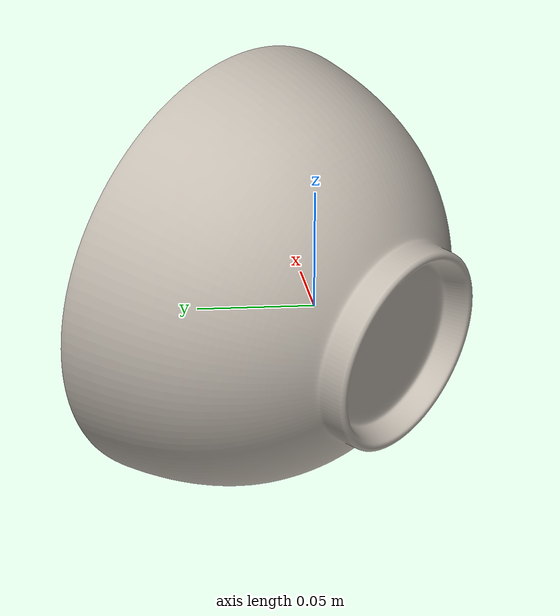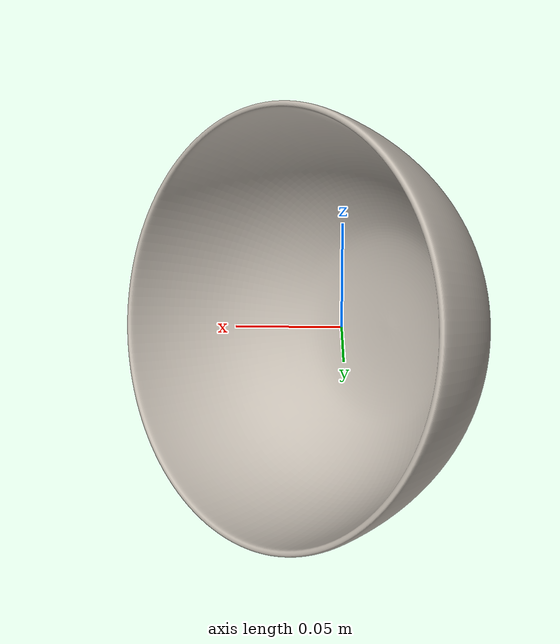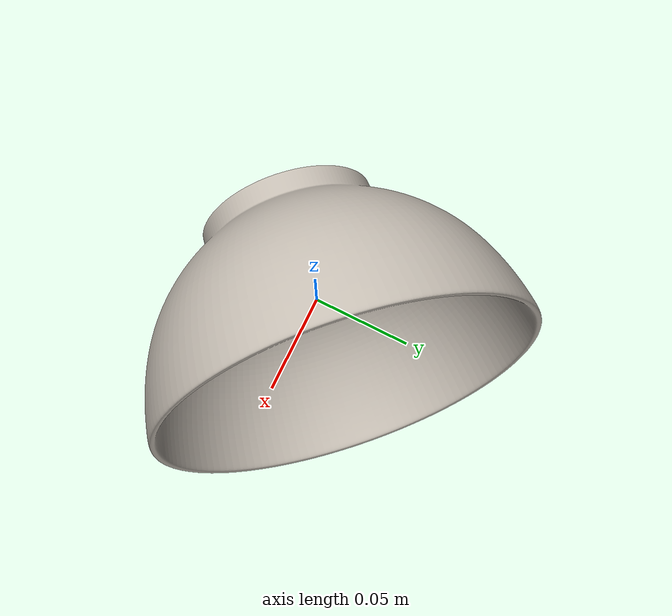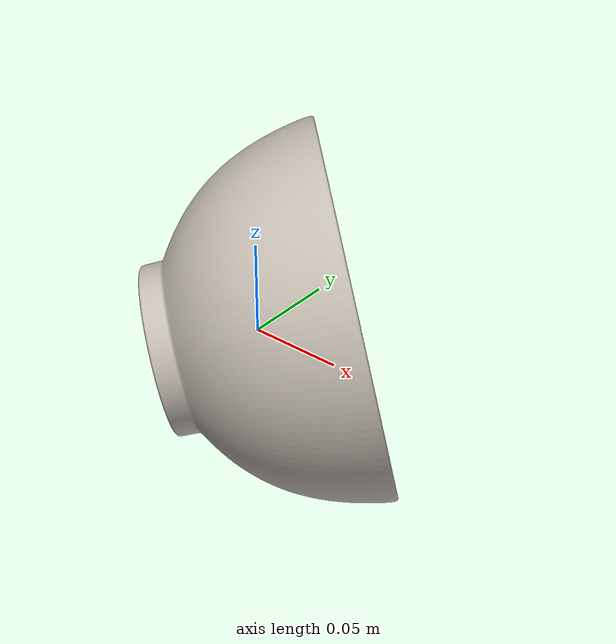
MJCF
<mujoco model="plate_10">
  <asset>
    <mesh file="visual/model_normalized_0.obj" name="model_normalized_0_vis" scale="0.2 0.2 0.2" refquat="0.7397248827654451 0.5594849272637079 -0.29905092401907074 0.2243930899687281" />
    <mesh file="collision/model_normalized_collision_22.obj" name="model_normalized_collision_22._coll" scale="0.2 0.2 0.2" refquat="0.7397248827654451 0.5594849272637079 -0.29905092401907074 0.2243930899687281" />
    <mesh file="collision/model_normalized_collision_23.obj" name="model_normalized_collision_23._coll" scale="0.2 0.2 0.2" refquat="0.7397248827654451 0.5594849272637079 -0.29905092401907074 0.2243930899687281" />
    <mesh file="collision/model_normalized_collision_21.obj" name="model_normalized_collision_21._coll" scale="0.2 0.2 0.2" refquat="0.7397248827654451 0.5594849272637079 -0.29905092401907074 0.2243930899687281" />
    <mesh file="collision/model_normalized_collision_20.obj" name="model_normalized_collision_20._coll" scale="0.2 0.2 0.2" refquat="0.7397248827654451 0.5594849272637079 -0.29905092401907074 0.2243930899687281" />
    <mesh file="collision/model_normalized_collision_24.obj" name="model_normalized_collision_24._coll" scale="0.2 0.2 0.2" refquat="0.7397248827654451 0.5594849272637079 -0.29905092401907074 0.2243930899687281" />
    <mesh file="collision/model_normalized_collision_30.obj" name="model_normalized_collision_30._coll" scale="0.2 0.2 0.2" refquat="0.7397248827654451 0.5594849272637079 -0.29905092401907074 0.2243930899687281" />
    <mesh file="collision/model_normalized_collision_18.obj" name="model_normalized_collision_18._coll" scale="0.2 0.2 0.2" refquat="0.7397248827654451 0.5594849272637079 -0.29905092401907074 0.2243930899687281" />
    <mesh file="collision/model_normalized_collision_19.obj" name="model_normalized_collision_19._coll" scale="0.2 0.2 0.2" refquat="0.7397248827654451 0.5594849272637079 -0.29905092401907074 0.2243930899687281" />
    <mesh file="collision/model_normalized_collision_31.obj" name="model_normalized_collision_31._coll" scale="0.2 0.2 0.2" refquat="0.7397248827654451 0.5594849272637079 -0.29905092401907074 0.2243930899687281" />
    <mesh file="collision/model_normalized_collision_25.obj" name="model_normalized_collision_25._coll" scale="0.2 0.2 0.2" refquat="0.7397248827654451 0.5594849272637079 -0.29905092401907074 0.2243930899687281" />
    <mesh file="collision/model_normalized_collision_27.obj" name="model_normalized_collision_27._coll" scale="0.2 0.2 0.2" refquat="0.7397248827654451 0.5594849272637079 -0.29905092401907074 0.2243930899687281" />
    <mesh file="collision/model_normalized_collision_26.obj" name="model_normalized_collision_26._coll" scale="0.2 0.2 0.2" refquat="0.7397248827654451 0.5594849272637079 -0.29905092401907074 0.2243930899687281" />
    <mesh file="collision/model_normalized_collision_9.obj" name="model_normalized_collision_9._coll" scale="0.2 0.2 0.2" refquat="0.7397248827654451 0.5594849272637079 -0.29905092401907074 0.2243930899687281" />
    <mesh file="collision/model_normalized_collision_8.obj" name="model_normalized_collision_8._coll" scale="0.2 0.2 0.2" refquat="0.7397248827654451 0.5594849272637079 -0.29905092401907074 0.2243930899687281" />
    <mesh file="collision/model_normalized_collision_6.obj" name="model_normalized_collision_6._coll" scale="0.2 0.2 0.2" refquat="0.7397248827654451 0.5594849272637079 -0.29905092401907074 0.2243930899687281" />
    <mesh file="collision/model_normalized_collision_7.obj" name="model_normalized_collision_7._coll" scale="0.2 0.2 0.2" refquat="0.7397248827654451 0.5594849272637079 -0.29905092401907074 0.2243930899687281" />
    <mesh file="collision/model_normalized_collision_5.obj" name="model_normalized_collision_5._coll" scale="0.2 0.2 0.2" refquat="0.7397248827654451 0.5594849272637079 -0.29905092401907074 0.2243930899687281" />
    <mesh file="collision/model_normalized_collision_4.obj" name="model_normalized_collision_4._coll" scale="0.2 0.2 0.2" refquat="0.7397248827654451 0.5594849272637079 -0.29905092401907074 0.2243930899687281" />
    <mesh file="collision/model_normalized_collision_0.obj" name="model_normalized_collision_0._coll" scale="0.2 0.2 0.2" refquat="0.7397248827654451 0.5594849272637079 -0.29905092401907074 0.2243930899687281" />
    <mesh file="collision/model_normalized_collision_1.obj" name="model_normalized_collision_1._coll" scale="0.2 0.2 0.2" refquat="0.7397248827654451 0.5594849272637079 -0.29905092401907074 0.2243930899687281" />
    <mesh file="collision/model_normalized_collision_3.obj" name="model_normalized_collision_3._coll" scale="0.2 0.2 0.2" refquat="0.7397248827654451 0.5594849272637079 -0.29905092401907074 0.2243930899687281" />
    <mesh file="collision/model_normalized_collision_2.obj" name="model_normalized_collision_2._coll" scale="0.2 0.2 0.2" refquat="0.7397248827654451 0.5594849272637079 -0.29905092401907074 0.2243930899687281" />
    <mesh file="collision/model_normalized_collision_17.obj" name="model_normalized_collision_17._coll" scale="0.2 0.2 0.2" refquat="0.7397248827654451 0.5594849272637079 -0.29905092401907074 0.2243930899687281" />
    <mesh file="collision/model_normalized_collision_16.obj" name="model_normalized_collision_16._coll" scale="0.2 0.2 0.2" refquat="0.7397248827654451 0.5594849272637079 -0.29905092401907074 0.2243930899687281" />
    <mesh file="collision/model_normalized_collision_28.obj" name="model_normalized_collision_28._coll" scale="0.2 0.2 0.2" refquat="0.7397248827654451 0.5594849272637079 -0.29905092401907074 0.2243930899687281" />
    <mesh file="collision/model_normalized_collision_14.obj" name="model_normalized_collision_14._coll" scale="0.2 0.2 0.2" refquat="0.7397248827654451 0.5594849272637079 -0.29905092401907074 0.2243930899687281" />
    <mesh file="collision/model_normalized_collision_15.obj" name="model_normalized_collision_15._coll" scale="0.2 0.2 0.2" refquat="0.7397248827654451 0.5594849272637079 -0.29905092401907074 0.2243930899687281" />
    <mesh file="collision/model_normalized_collision_29.obj" name="model_normalized_collision_29._coll" scale="0.2 0.2 0.2" refquat="0.7397248827654451 0.5594849272637079 -0.29905092401907074 0.2243930899687281" />
    <mesh file="collision/model_normalized_collision_11.obj" name="model_normalized_collision_11._coll" scale="0.2 0.2 0.2" refquat="0.7397248827654451 0.5594849272637079 -0.29905092401907074 0.2243930899687281" />
    <mesh file="collision/model_normalized_collision_10.obj" name="model_normalized_collision_10._coll" scale="0.2 0.2 0.2" refquat="0.7397248827654451 0.5594849272637079 -0.29905092401907074 0.2243930899687281" />
    <mesh file="collision/model_normalized_collision_12.obj" name="model_normalized_collision_12._coll" scale="0.2 0.2 0.2" refquat="0.7397248827654451 0.5594849272637079 -0.29905092401907074 0.2243930899687281" />
    <mesh file="collision/model_normalized_collision_13.obj" name="model_normalized_collision_13._coll" scale="0.2 0.2 0.2" refquat="0.7397248827654451 0.5594849272637079 -0.29905092401907074 0.2243930899687281" />
    <texture type="2d" name="image0" file="visual/image0.png" />
    <material name="defaultMat.035" texture="image0" specular="0.5" shininess="0.800356625" />
  </asset>
  <worldbody>
  <body>
      <body name="object">
        <geom solimp="0.998 0.998 0.001" solref="0.001 1" density="100" friction="0.95 0.3 0.1" type="mesh" mesh="model_normalized_0_vis" conaffinity="0" contype="0" group="1" material="defaultMat.035" />
        <geom solimp="0.998 0.998 0.001" solref="0.001 1" density="100" friction="0.95 0.3 0.1" type="mesh" mesh="model_normalized_collision_22._coll" group="0" rgba="0.8 0.8 0.8 0.0" />
        <geom solimp="0.998 0.998 0.001" solref="0.001 1" density="100" friction="0.95 0.3 0.1" type="mesh" mesh="model_normalized_collision_23._coll" group="0" rgba="0.8 0.8 0.8 0.0" />
        <geom solimp="0.998 0.998 0.001" solref="0.001 1" density="100" friction="0.95 0.3 0.1" type="mesh" mesh="model_normalized_collision_21._coll" group="0" rgba="0.8 0.8 0.8 0.0" />
        <geom solimp="0.998 0.998 0.001" solref="0.001 1" density="100" friction="0.95 0.3 0.1" type="mesh" mesh="model_normalized_collision_20._coll" group="0" rgba="0.8 0.8 0.8 0.0" />
        <geom solimp="0.998 0.998 0.001" solref="0.001 1" density="100" friction="0.95 0.3 0.1" type="mesh" mesh="model_normalized_collision_24._coll" group="0" rgba="0.8 0.8 0.8 0.0" />
        <geom solimp="0.998 0.998 0.001" solref="0.001 1" density="100" friction="0.95 0.3 0.1" type="mesh" mesh="model_normalized_collision_30._coll" group="0" rgba="0.8 0.8 0.8 0.0" />
        <geom solimp="0.998 0.998 0.001" solref="0.001 1" density="100" friction="0.95 0.3 0.1" type="mesh" mesh="model_normalized_collision_18._coll" group="0" rgba="0.8 0.8 0.8 0.0" />
        <geom solimp="0.998 0.998 0.001" solref="0.001 1" density="100" friction="0.95 0.3 0.1" type="mesh" mesh="model_normalized_collision_19._coll" group="0" rgba="0.8 0.8 0.8 0.0" />
        <geom solimp="0.998 0.998 0.001" solref="0.001 1" density="100" friction="0.95 0.3 0.1" type="mesh" mesh="model_normalized_collision_31._coll" group="0" rgba="0.8 0.8 0.8 0.0" />
        <geom solimp="0.998 0.998 0.001" solref="0.001 1" density="100" friction="0.95 0.3 0.1" type="mesh" mesh="model_normalized_collision_25._coll" group="0" rgba="0.8 0.8 0.8 0.0" />
        <geom solimp="0.998 0.998 0.001" solref="0.001 1" density="100" friction="0.95 0.3 0.1" type="mesh" mesh="model_normalized_collision_27._coll" group="0" rgba="0.8 0.8 0.8 0.0" />
        <geom solimp="0.998 0.998 0.001" solref="0.001 1" density="100" friction="0.95 0.3 0.1" type="mesh" mesh="model_normalized_collision_26._coll" group="0" rgba="0.8 0.8 0.8 0.0" />
        <geom solimp="0.998 0.998 0.001" solref="0.001 1" density="100" friction="0.95 0.3 0.1" type="mesh" mesh="model_normalized_collision_9._coll" group="0" rgba="0.8 0.8 0.8 0.0" />
        <geom solimp="0.998 0.998 0.001" solref="0.001 1" density="100" friction="0.95 0.3 0.1" type="mesh" mesh="model_normalized_collision_8._coll" group="0" rgba="0.8 0.8 0.8 0.0" />
        <geom solimp="0.998 0.998 0.001" solref="0.001 1" density="100" friction="0.95 0.3 0.1" type="mesh" mesh="model_normalized_collision_6._coll" group="0" rgba="0.8 0.8 0.8 0.0" />
        <geom solimp="0.998 0.998 0.001" solref="0.001 1" density="100" friction="0.95 0.3 0.1" type="mesh" mesh="model_normalized_collision_7._coll" group="0" rgba="0.8 0.8 0.8 0.0" />
        <geom solimp="0.998 0.998 0.001" solref="0.001 1" density="100" friction="0.95 0.3 0.1" type="mesh" mesh="model_normalized_collision_5._coll" group="0" rgba="0.8 0.8 0.8 0.0" />
        <geom solimp="0.998 0.998 0.001" solref="0.001 1" density="100" friction="0.95 0.3 0.1" type="mesh" mesh="model_normalized_collision_4._coll" group="0" rgba="0.8 0.8 0.8 0.0" />
        <geom solimp="0.998 0.998 0.001" solref="0.001 1" density="100" friction="0.95 0.3 0.1" type="mesh" mesh="model_normalized_collision_0._coll" group="0" rgba="0.8 0.8 0.8 0.0" />
        <geom solimp="0.998 0.998 0.001" solref="0.001 1" density="100" friction="0.95 0.3 0.1" type="mesh" mesh="model_normalized_collision_1._coll" group="0" rgba="0.8 0.8 0.8 0.0" />
        <geom solimp="0.998 0.998 0.001" solref="0.001 1" density="100" friction="0.95 0.3 0.1" type="mesh" mesh="model_normalized_collision_3._coll" group="0" rgba="0.8 0.8 0.8 0.0" />
        <geom solimp="0.998 0.998 0.001" solref="0.001 1" density="100" friction="0.95 0.3 0.1" type="mesh" mesh="model_normalized_collision_2._coll" group="0" rgba="0.8 0.8 0.8 0.0" />
        <geom solimp="0.998 0.998 0.001" solref="0.001 1" density="100" friction="0.95 0.3 0.1" type="mesh" mesh="model_normalized_collision_17._coll" group="0" rgba="0.8 0.8 0.8 0.0" />
        <geom solimp="0.998 0.998 0.001" solref="0.001 1" density="100" friction="0.95 0.3 0.1" type="mesh" mesh="model_normalized_collision_16._coll" group="0" rgba="0.8 0.8 0.8 0.0" />
        <geom solimp="0.998 0.998 0.001" solref="0.001 1" density="100" friction="0.95 0.3 0.1" type="mesh" mesh="model_normalized_collision_28._coll" group="0" rgba="0.8 0.8 0.8 0.0" />
        <geom solimp="0.998 0.998 0.001" solref="0.001 1" density="100" friction="0.95 0.3 0.1" type="mesh" mesh="model_normalized_collision_14._coll" group="0" rgba="0.8 0.8 0.8 0.0" />
        <geom solimp="0.998 0.998 0.001" solref="0.001 1" density="100" friction="0.95 0.3 0.1" type="mesh" mesh="model_normalized_collision_15._coll" group="0" rgba="0.8 0.8 0.8 0.0" />
        <geom solimp="0.998 0.998 0.001" solref="0.001 1" density="100" friction="0.95 0.3 0.1" type="mesh" mesh="model_normalized_collision_29._coll" group="0" rgba="0.8 0.8 0.8 0.0" />
        <geom solimp="0.998 0.998 0.001" solref="0.001 1" density="100" friction="0.95 0.3 0.1" type="mesh" mesh="model_normalized_collision_11._coll" group="0" rgba="0.8 0.8 0.8 0.0" />
        <geom solimp="0.998 0.998 0.001" solref="0.001 1" density="100" friction="0.95 0.3 0.1" type="mesh" mesh="model_normalized_collision_10._coll" group="0" rgba="0.8 0.8 0.8 0.0" />
        <geom solimp="0.998 0.998 0.001" solref="0.001 1" density="100" friction="0.95 0.3 0.1" type="mesh" mesh="model_normalized_collision_12._coll" group="0" rgba="0.8 0.8 0.8 0.0" />
        <geom solimp="0.998 0.998 0.001" solref="0.001 1" density="100" friction="0.95 0.3 0.1" type="mesh" mesh="model_normalized_collision_13._coll" group="0" rgba="0.8 0.8 0.8 0.0" />
      </body>
      <site rgba="0 0 0 0" size="0.005" pos="-0.00015597795692112308 -7.656947075153048e-05 -0.03321701894016694" name="bottom_site" />
      <site rgba="0 0 0 0" size="0.005" pos="-0.00015597795692112308 -7.656947075153048e-05 0.022641931737233903" name="top_site" />
      <site rgba="0 0 0 0" size="0.005" pos="0.09504878174901156 0.09418715387715267 -0.005287543601466515" name="horizontal_radius_site" />
    </body>
    </worldbody>
</mujoco>
